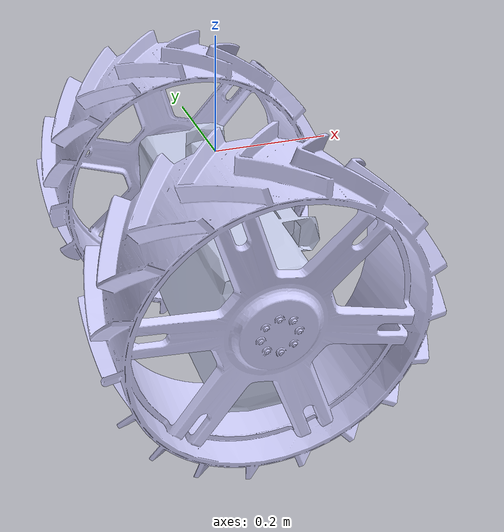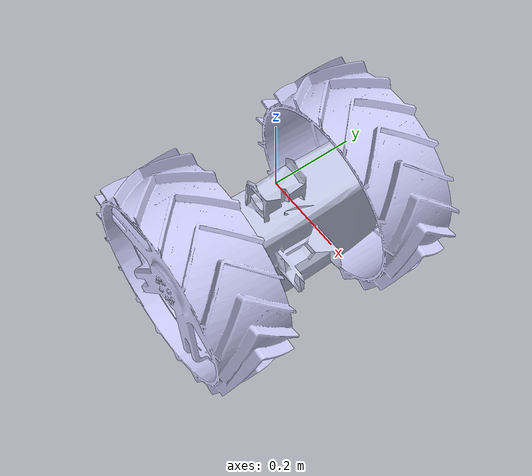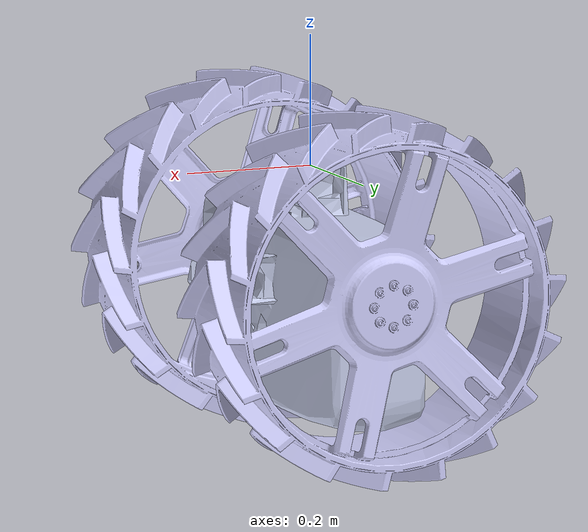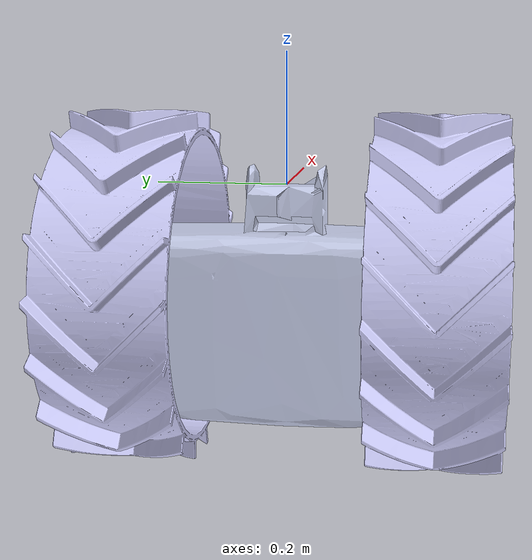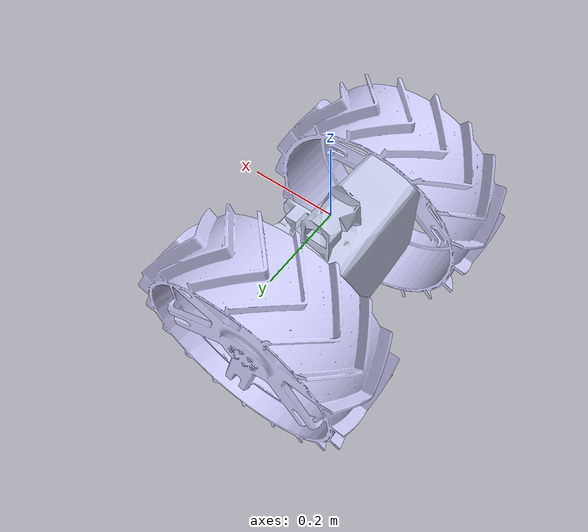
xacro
<?xml version="1.0" encoding="utf-8"?>
<!--call this specifying the wheel number #12 with `xacro ./hero_wheel.xacro number:=12`, default is number=11-->
<robot name="hero_wheel" xmlns:xacro="http://www.ros.org/wiki/xacro">
  <xacro:include filename="hero_wheel_macro.xacro"></xacro:include>
  <xacro:arg default="11" name="number"></xacro:arg>
  <xacro:property name="number_value" value="$(arg number)"></xacro:property>
  <xacro:add_wheel prefix="wheel${number_value}_"/>
  <link name="base_link"/>
  <joint name="base_fix" type="fixed">
    <origin rpy="0 0 0" xyz="0 0 0"></origin>
    <parent link="base_link"></parent>
    <child link="wheel${number_value}_in"></child>
  </joint>
</robot>

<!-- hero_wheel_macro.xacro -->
<robot xmlns:xacro="http://www.ros.org/wiki/xacro" name="hero_wheel_module">

  <xacro:macro name="add_wheel" params="prefix:=11">

  <xacro:property name="ThisPackage" value="ros2_m_hero_pkg" />
  <xacro:property name="MeshPath" value="package://${ThisPackage}/meshes/hero_wheel_module/raw" />

  <xacro:property name="mesh_extension" value="STL" />

  <!-- PREFIX BELOW IS FOR TESTING. TODO: REMOVE -->

  <link name="${prefix}body">
    <inertial>
      <origin xyz="0.056173 0 -0.057088" rpy="0 0 0" />
      <mass value="10.64" />
      <inertia ixx="0.0025681" ixy="-4.8803E-05" ixz="-0.0005558" iyy="0.0040357" iyz="-4.8753E-05" izz="0.0025657" />
    </inertial>
    <visual>
      <origin xyz="0 0 0" rpy="0 0 0" />
      <geometry>
        <mesh filename="${MeshPath}/base_link.${mesh_extension}"/>
      </geometry>
      <material name="">
        <color rgba="0.79216 0.81961 0.93333 1" />
      </material>
    </visual>
    <collision>
      <origin xyz="0 0 0" rpy="0 0 0" />
      <geometry>
        <mesh filename="${MeshPath}/base_link.${mesh_extension}" />
      </geometry>
    </collision>
  </link>
  <link name="${prefix}left">
    <inertial>
      <origin xyz="0 0 -0.044735" rpy="0 0 0" />
      <mass value="5.7" />
      <inertia ixx="0.10868" ixy="-0.0011835" ixz="9.2131E-05" iyy="0.093396" iyz="0.0011967" izz="0.16995" />
    </inertial>
    <visual>
      <origin xyz="0 0 0" rpy="0 0 0" />
      <geometry>
        <mesh filename="${MeshPath}/wheel_left.${mesh_extension}" />
      </geometry>
      <material name="">
        <color rgba="0.82353 0.82353 1 1" />
      </material>
    </visual>
    <collision>
      <origin xyz="0 0 0" rpy="0 0 0" />
      <geometry>
        <mesh filename="${MeshPath}/wheel_left.${mesh_extension}" />
      </geometry>
    </collision>
  </link>
  <joint name="${prefix}left_joint" type="continuous">
  <origin xyz="0 -0.286 0" rpy="${pi/2} 0 0" />
    <parent link="${prefix}body" />
    <child link="${prefix}left" />
    <axis xyz="0 0 1" />
  </joint>
  <link name="${prefix}right">
    <inertial>
      <origin xyz="0 0 -0.044734" rpy="0 0 0" />
      <mass value="5.7" />
      <inertia ixx="0.089717" ixy="-1.4747E-08" ixz="6.8276E-09" iyy="0.089717" iyz="1.1155E-08" izz="0.14746" />
    </inertial>
    <visual>
      <origin xyz="0 0 0" rpy="0 0 0" />
      <geometry>
        <mesh filename="${MeshPath}/wheel_right.${mesh_extension}" />
      </geometry>
      <material name="">
        <color rgba="0.82353 0.82353 1 1" />
      </material>
    </visual>
    <collision>
      <origin xyz="0 0 0" rpy="0 0 0" />
      <geometry>
        <mesh filename="${MeshPath}/wheel_right.${mesh_extension}" />
      </geometry>
    </collision>
  </link>
  <joint name="${prefix}right_joint" type="continuous">
    <origin xyz="0 0.286 0" rpy="${-pi/2} 0 0" />
    <parent link="${prefix}body" />
    <child link="${prefix}right" />
    <axis xyz="0 0 1" />
  </joint>

  <link name="${prefix}in"/>
  <link name="${prefix}center"/>
  <link name="${prefix}out"/>

  <joint name="${prefix}fix" type="fixed">
  <origin xyz="0 0 -0.16" rpy="0 ${pi/4} ${0}"/>
    <parent link="${prefix}in"/>
    <child link="${prefix}body"/>
  </joint>

  <joint name="${prefix}cent_fix" type="fixed">
  <origin xyz="0 0 -0.16" rpy="0 0 0"/>
    <parent link="${prefix}in"/>
    <child link="${prefix}center"/>
  </joint>

  <joint name="${prefix}cen2out" type="fixed">
  <origin xyz="0.15 0 0" rpy="0 ${pi/2} 0"/>
    <parent link="${prefix}center"/>
    <child link="${prefix}out"/>
    <axis xyz="0 0 0"/>
  </joint>
  </xacro:macro>
</robot>
